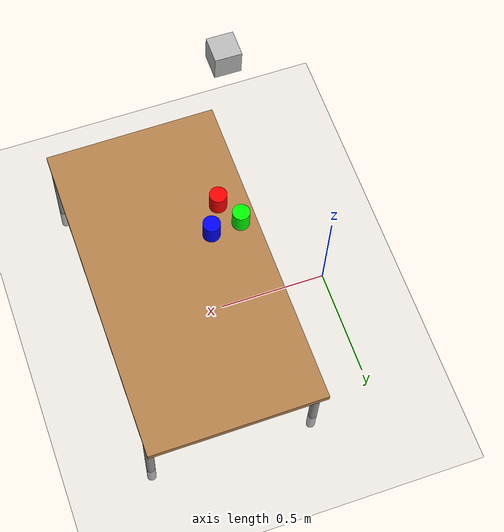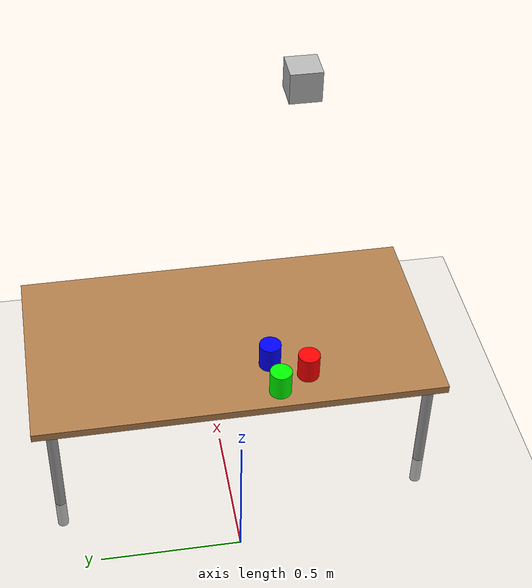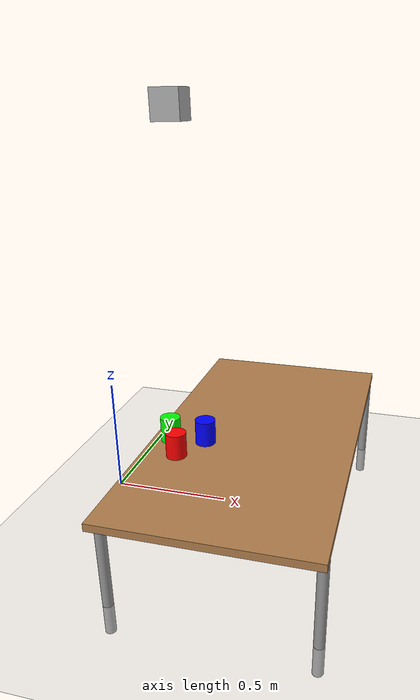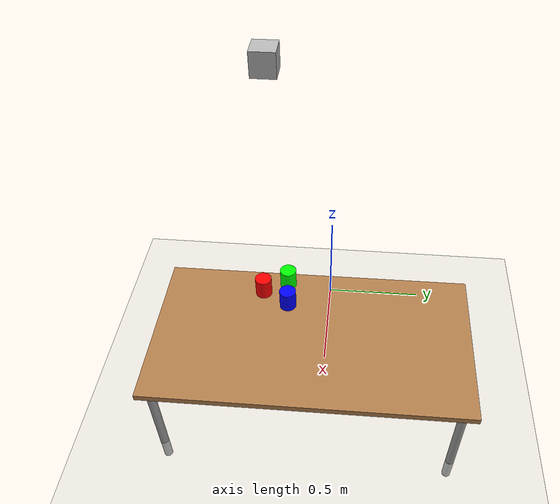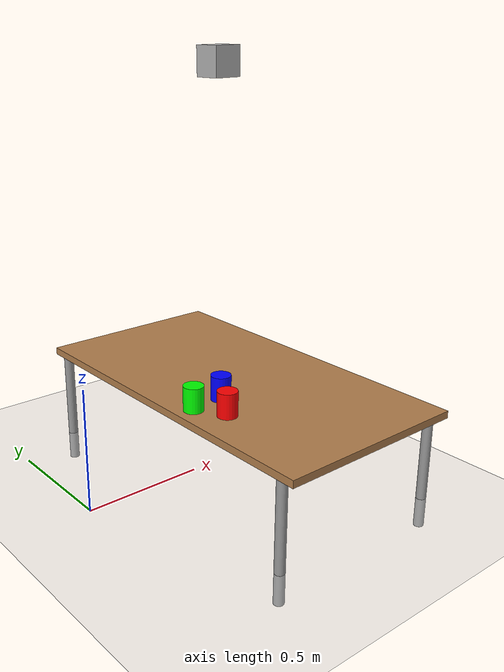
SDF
<sdf version="1.6">
 <world name="default">
  <model name="ground_plane">
   <static>1</static>
   <link name="link">
    <collision name="collision">
     <geometry><plane><normal>0 0 1</normal><size>100 100</size></plane></geometry>
     <surface><friction><ode><mu>100</mu><mu2>50</mu2></ode></friction></surface>
    </collision>
    <visual name="visual">
     <cast_shadows>0</cast_shadows>
     <geometry><plane><normal>0 0 1</normal><size>100 100</size></plane></geometry>
     <material>
      <script><uri>file://media/materials/scripts/gazebo.material</uri><name>Gazebo/Grey</name></script>
     </material>
    </visual>
   </link>
  </model>
  <light name="sun" type="directional">
   <pose>0 0 10 0 -0 0</pose>
   <diffuse>0.8 0.8 0.8 1</diffuse>
   <specular>0.1 0.1 0.1 1</specular>
   <attenuation>
    <range>1000</range>
    <constant>0.9</constant>
    <linear>0.01</linear>
    <quadratic>0.001</quadratic>
   </attenuation>
   <direction>-0.5 0.5 -1</direction>
  </light>
  <model name="camera">
   <link name="link">
    <gravity>0</gravity>
    <pose>0 1.5 2.5 0 -0 0</pose>
    <inertial>
     <mass>0.1</mass>
     <inertia><ixx>1</ixx><ixy>0</ixy><ixz>0</ixz><iyy>1</iyy><iyz>0</iyz><izz>1</izz></inertia>
    </inertial>
    <visual name="visual"><geometry><box><size>0.1 0.1 0.1</size></box></geometry></visual>
    <sensor name="camera" type="camera">
     <camera name="__default__">
      <horizontal_fov>1.047</horizontal_fov>
      <image><width>320</width><height>240</height></image>
      <clip><near>0.1</near><far>100</far></clip>
     </camera>
     <plugin name="camera_controller" filename="libgazebo_ros_camera.so">
      <alwaysOn>true</alwaysOn>
      <updateRate>0.0</updateRate>
      <cameraName>camera</cameraName>
      <imageTopicName>image_raw</imageTopicName>
      <cameraInfoTopicName>camera_info</cameraInfoTopicName>
      <frameName>camera</frameName>
      <hackBaseline>0.07</hackBaseline>
      <distortionK1>0.0</distortionK1>
      <distortionK2>0.0</distortionK2>
      <distortionK3>0.0</distortionK3>
      <distortionT1>0.0</distortionT1>
      <distortionT2>0.0</distortionT2>
     </plugin>
     <always_on>1</always_on>
     <update_rate>30</update_rate>
     <visualize>0</visualize>
    </sensor>
   </link>
   <pose>-2.07108 -1.74357 1.5864 0 1.55446 0</pose>
  </model>
  <gravity>0 0 -9.8</gravity>
  <magnetic_field>6e-06 2.3e-05 -4.2e-05</magnetic_field>
  <atmosphere type="adiabatic"/>
  <physics name="default_physics" default="0" type="ode">
   <max_step_size>0.001</max_step_size>
   <real_time_factor>1</real_time_factor>
   <real_time_update_rate>1000</real_time_update_rate>
  </physics>
  <scene><ambient>0.4 0.4 0.4 1</ambient><background>0.7 0.7 0.7 1</background><shadows>1</shadows></scene>
  <spherical_coordinates>
   <surface_model>EARTH_WGS84</surface_model>
   <latitude_deg>0</latitude_deg>
   <longitude_deg>0</longitude_deg>
   <elevation>0</elevation>
   <heading_deg>0</heading_deg>
  </spherical_coordinates>
  <model name="table_iiwa_height">
   <link name="link">
    <inertial>
     <mass>1</mass>
     <inertia><ixx>1</ixx><ixy>0</ixy><ixz>0</ixz><iyy>1</iyy><iyz>0</iyz><izz>1</izz></inertia>
    </inertial>
    <visual name="visual1">
     <pose>0 0 0.375 0 -0 0</pose>
     <geometry><box><size>1.5 0.8 0.03</size></box></geometry>
     <material>
      <script><uri>file://media/materials/scripts/gazebo.material</uri><name>Gazebo/Wood</name></script>
      <shader type="pixel"><normal_map>__default__</normal_map></shader>
      <ambient>1 1 1 1</ambient>
      <diffuse>1 1 1 1</diffuse>
      <specular>0.2 0.2 0.2 1</specular>
      <emissive>0 0 0 1</emissive>
     </material>
    </visual>
    <visual name="front_left_leg">
     <pose>0.68 0.38 0.125 0 -0 0</pose>
     <geometry><cylinder><radius>0.02</radius><length>0.5</length></cylinder></geometry>
     <material>
      <script><uri>file://media/materials/scripts/gazebo.material</uri><name>Gazebo/Grey</name></script>
      <shader type="pixel"><normal_map>__default__</normal_map></shader>
      <ambient>0.3 0.3 0.3 1</ambient>
      <diffuse>0.7 0.7 0.7 1</diffuse>
      <specular>0.01 0.01 0.01 1</specular>
      <emissive>0 0 0 1</emissive>
     </material>
    </visual>
    <visual name="front_right_leg">
     <pose>0.68 -0.38 0.125 0 -0 0</pose>
     <geometry><cylinder><radius>0.02</radius><length>0.5</length></cylinder></geometry>
     <material>
      <script><uri>file://media/materials/scripts/gazebo.material</uri><name>Gazebo/Grey</name></script>
      <shader type="pixel"><normal_map>__default__</normal_map></shader>
      <ambient>0.3 0.3 0.3 1</ambient>
      <diffuse>0.7 0.7 0.7 1</diffuse>
      <specular>0.01 0.01 0.01 1</specular>
      <emissive>0 0 0 1</emissive>
     </material>
    </visual>
    <visual name="back_right_leg">
     <pose>-0.68 -0.38 0.125 0 -0 0</pose>
     <geometry><cylinder><radius>0.02</radius><length>0.5</length></cylinder></geometry>
     <material>
      <script><uri>file://media/materials/scripts/gazebo.material</uri><name>Gazebo/Grey</name></script>
      <shader type="pixel"><normal_map>__default__</normal_map></shader>
      <ambient>0.3 0.3 0.3 1</ambient>
      <diffuse>0.7 0.7 0.7 1</diffuse>
      <specular>0.01 0.01 0.01 1</specular>
      <emissive>0 0 0 1</emissive>
     </material>
    </visual>
    <visual name="back_left_leg">
     <pose>-0.68 0.38 0.125 0 -0 0</pose>
     <geometry><cylinder><radius>0.02</radius><length>0.5</length></cylinder></geometry>
     <material>
      <script><uri>file://media/materials/scripts/gazebo.material</uri><name>Gazebo/Grey</name></script>
      <shader type="pixel"><normal_map>__default__</normal_map></shader>
      <ambient>0.3 0.3 0.3 1</ambient>
      <diffuse>0.7 0.7 0.7 1</diffuse>
      <specular>0.01 0.01 0.01 1</specular>
      <emissive>0 0 0 1</emissive>
     </material>
    </visual>
    <collision name="surface">
     <pose>0 0 0.375 0 -0 0</pose>
     <geometry><box><size>1.5 0.8 0.03</size></box></geometry>
     <surface>
      <friction>
       <ode><mu>0.6</mu><mu2>0.6</mu2><fdir1>0 0 0</fdir1><slip1>0</slip1><slip2>0</slip2></ode>
       <torsional>
        <coefficient>1</coefficient>
        <patch_radius>0</patch_radius>
        <surface_radius>0</surface_radius>
        <use_patch_radius>1</use_patch_radius>
        <ode><slip>0</slip></ode>
       </torsional>
      </friction>
      <bounce><restitution_coefficient>0</restitution_coefficient><threshold>1e+06</threshold></bounce>
      <contact>
       <collide_without_contact>0</collide_without_contact>
       <collide_without_contact_bitmask>1</collide_without_contact_bitmask>
       <collide_bitmask>1</collide_bitmask>
       <ode>
        <soft_cfm>0</soft_cfm>
        <soft_erp>0.2</soft_erp>
        <kp>1e+13</kp>
        <kd>1</kd>
        <max_vel>0.01</max_vel>
        <min_depth>0</min_depth>
       </ode>
       <bullet>
        <split_impulse>1</split_impulse>
        <split_impulse_penetration_threshold>-0.01</split_impulse_penetration_threshold>
        <soft_cfm>0</soft_cfm>
        <soft_erp>0.2</soft_erp>
        <kp>1e+13</kp>
        <kd>1</kd>
       </bullet>
      </contact>
     </surface>
    </collision>
    <collision name="front_left_leg">
     <pose>0.68 0.38 0.125 0 -0 0</pose>
     <geometry><cylinder><radius>0.02</radius><length>0.25</length></cylinder></geometry>
     <surface>
      <friction>
       <ode><mu>1</mu><mu2>1</mu2><fdir1>0 0 0</fdir1><slip1>0</slip1><slip2>0</slip2></ode>
       <torsional>
        <coefficient>1</coefficient>
        <patch_radius>0</patch_radius>
        <surface_radius>0</surface_radius>
        <use_patch_radius>1</use_patch_radius>
        <ode><slip>0</slip></ode>
       </torsional>
      </friction>
      <bounce><restitution_coefficient>0</restitution_coefficient><threshold>1e+06</threshold></bounce>
      <contact>
       <collide_without_contact>0</collide_without_contact>
       <collide_without_contact_bitmask>1</collide_without_contact_bitmask>
       <collide_bitmask>1</collide_bitmask>
       <ode>
        <soft_cfm>0</soft_cfm>
        <soft_erp>0.2</soft_erp>
        <kp>1e+13</kp>
        <kd>1</kd>
        <max_vel>0.01</max_vel>
        <min_depth>0</min_depth>
       </ode>
       <bullet>
        <split_impulse>1</split_impulse>
        <split_impulse_penetration_threshold>-0.01</split_impulse_penetration_threshold>
        <soft_cfm>0</soft_cfm>
        <soft_erp>0.2</soft_erp>
        <kp>1e+13</kp>
        <kd>1</kd>
       </bullet>
      </contact>
     </surface>
    </collision>
    <collision name="front_right_leg">
     <pose>0.68 -0.38 0.125 0 -0 0</pose>
     <geometry><cylinder><radius>0.02</radius><length>0.25</length></cylinder></geometry>
     <surface>
      <friction>
       <ode><mu>1</mu><mu2>1</mu2><fdir1>0 0 0</fdir1><slip1>0</slip1><slip2>0</slip2></ode>
       <torsional>
        <coefficient>1</coefficient>
        <patch_radius>0</patch_radius>
        <surface_radius>0</surface_radius>
        <use_patch_radius>1</use_patch_radius>
        <ode><slip>0</slip></ode>
       </torsional>
      </friction>
      <bounce><restitution_coefficient>0</restitution_coefficient><threshold>1e+06</threshold></bounce>
      <contact>
       <collide_without_contact>0</collide_without_contact>
       <collide_without_contact_bitmask>1</collide_without_contact_bitmask>
       <collide_bitmask>1</collide_bitmask>
       <ode>
        <soft_cfm>0</soft_cfm>
        <soft_erp>0.2</soft_erp>
        <kp>1e+13</kp>
        <kd>1</kd>
        <max_vel>0.01</max_vel>
        <min_depth>0</min_depth>
       </ode>
       <bullet>
        <split_impulse>1</split_impulse>
        <split_impulse_penetration_threshold>-0.01</split_impulse_penetration_threshold>
        <soft_cfm>0</soft_cfm>
        <soft_erp>0.2</soft_erp>
        <kp>1e+13</kp>
        <kd>1</kd>
       </bullet>
      </contact>
     </surface>
    </collision>
    <collision name="back_right_leg">
     <pose>-0.68 -0.38 0.125 0 -0 0</pose>
     <geometry><cylinder><radius>0.02</radius><length>0.25</length></cylinder></geometry>
     <surface>
      <friction>
       <ode><mu>1</mu><mu2>1</mu2><fdir1>0 0 0</fdir1><slip1>0</slip1><slip2>0</slip2></ode>
       <torsional>
        <coefficient>1</coefficient>
        <patch_radius>0</patch_radius>
        <surface_radius>0</surface_radius>
        <use_patch_radius>1</use_patch_radius>
        <ode><slip>0</slip></ode>
       </torsional>
      </friction>
      <bounce><restitution_coefficient>0</restitution_coefficient><threshold>1e+06</threshold></bounce>
      <contact>
       <collide_without_contact>0</collide_without_contact>
       <collide_without_contact_bitmask>1</collide_without_contact_bitmask>
       <collide_bitmask>1</collide_bitmask>
       <ode>
        <soft_cfm>0</soft_cfm>
        <soft_erp>0.2</soft_erp>
        <kp>1e+13</kp>
        <kd>1</kd>
        <max_vel>0.01</max_vel>
        <min_depth>0</min_depth>
       </ode>
       <bullet>
        <split_impulse>1</split_impulse>
        <split_impulse_penetration_threshold>-0.01</split_impulse_penetration_threshold>
        <soft_cfm>0</soft_cfm>
        <soft_erp>0.2</soft_erp>
        <kp>1e+13</kp>
        <kd>1</kd>
       </bullet>
      </contact>
     </surface>
    </collision>
    <collision name="back_left_leg">
     <pose>-0.68 0.38 0.125 0 -0 0</pose>
     <geometry><cylinder><radius>0.02</radius><length>0.25</length></cylinder></geometry>
     <surface>
      <friction>
       <ode><mu>1</mu><mu2>1</mu2><fdir1>0 0 0</fdir1><slip1>0</slip1><slip2>0</slip2></ode>
       <torsional>
        <coefficient>1</coefficient>
        <patch_radius>0</patch_radius>
        <surface_radius>0</surface_radius>
        <use_patch_radius>1</use_patch_radius>
        <ode><slip>0</slip></ode>
       </torsional>
      </friction>
      <bounce><restitution_coefficient>0</restitution_coefficient><threshold>1e+06</threshold></bounce>
      <contact>
       <collide_without_contact>0</collide_without_contact>
       <collide_without_contact_bitmask>1</collide_without_contact_bitmask>
       <collide_bitmask>1</collide_bitmask>
       <ode>
        <soft_cfm>0</soft_cfm>
        <soft_erp>0.2</soft_erp>
        <kp>1e+13</kp>
        <kd>1</kd>
        <max_vel>0.01</max_vel>
        <min_depth>0</min_depth>
       </ode>
       <bullet>
        <split_impulse>1</split_impulse>
        <split_impulse_penetration_threshold>-0.01</split_impulse_penetration_threshold>
        <soft_cfm>0</soft_cfm>
        <soft_erp>0.2</soft_erp>
        <kp>1e+13</kp>
        <kd>1</kd>
       </bullet>
      </contact>
     </surface>
    </collision>
   </link>
   <static>1</static>
   <pose>0.672658 -0.051838 0 0 -0 1.57545</pose>
  </model>
  <model name="unit_cylinder_blue_iiwa">
   <link name="link">
    <pose>0 0 0.05 0 -0 0</pose>
    <inertial>
     <mass>0.2</mass>
     <inertia><ixx>0.145833</ixx><ixy>0</ixy><ixz>0</ixz><iyy>0.145833</iyy><iyz>0</iyz><izz>0.125</izz></inertia>
    </inertial>
    <visual name="visual">
     <geometry><cylinder><radius>0.04</radius><length>0.1</length></cylinder></geometry>
     <material>
      <script><name>Gazebo/Grey</name><uri>file://media/materials/scripts/gazebo.material</uri></script>
      <shader type="pixel"><normal_map>__default__</normal_map></shader>
      <ambient>0 0 1 1</ambient>
      <diffuse>0 0 1 1</diffuse>
      <specular>0 0 1 1</specular>
      <emissive>0 0 1 1</emissive>
     </material>
    </visual>
    <collision name="collision">
     <geometry><cylinder><radius>0.04</radius><length>0.1</length></cylinder></geometry>
     <surface>
      <friction>
       <ode><mu>1</mu><mu2>1</mu2><fdir1>0 0 0</fdir1><slip1>0</slip1><slip2>0</slip2></ode>
       <torsional>
        <coefficient>1</coefficient>
        <patch_radius>0</patch_radius>
        <surface_radius>0</surface_radius>
        <use_patch_radius>1</use_patch_radius>
        <ode><slip>0</slip></ode>
       </torsional>
      </friction>
      <bounce><restitution_coefficient>0</restitution_coefficient><threshold>1e+06</threshold></bounce>
      <contact>
       <collide_without_contact>0</collide_without_contact>
       <collide_without_contact_bitmask>1</collide_without_contact_bitmask>
       <collide_bitmask>1</collide_bitmask>
       <ode>
        <soft_cfm>0</soft_cfm>
        <soft_erp>0.2</soft_erp>
        <kp>1e+13</kp>
        <kd>1</kd>
        <max_vel>0.01</max_vel>
        <min_depth>0</min_depth>
       </ode>
       <bullet>
        <split_impulse>1</split_impulse>
        <split_impulse_penetration_threshold>-0.01</split_impulse_penetration_threshold>
        <soft_cfm>0</soft_cfm>
        <soft_erp>0.2</soft_erp>
        <kp>1e+13</kp>
        <kd>1</kd>
       </bullet>
      </contact>
     </surface>
    </collision>
   </link>
   <static>0</static>
   <pose>0.489832 -0.185039 0.39 -0.00017 -0.000155 -0.000297</pose>
  </model>
  <model name="unit_cylinder_green_iiwa">
   <link name="link">
    <pose>0 0 0.05 0 -0 0</pose>
    <inertial>
     <mass>0.2</mass>
     <inertia><ixx>0.145833</ixx><ixy>0</ixy><ixz>0</ixz><iyy>0.145833</iyy><iyz>0</iyz><izz>0.125</izz></inertia>
    </inertial>
    <visual name="visual">
     <geometry><cylinder><radius>0.04</radius><length>0.1</length></cylinder></geometry>
     <material>
      <script><name>Gazebo/Grey</name><uri>file://media/materials/scripts/gazebo.material</uri></script>
      <shader type="pixel"><normal_map>__default__</normal_map></shader>
      <ambient>0 1 0 1</ambient>
      <diffuse>0 1 0 1</diffuse>
      <specular>0 1 0 1</specular>
      <emissive>0 1 0 1</emissive>
     </material>
    </visual>
    <collision name="collision">
     <geometry><cylinder><radius>0.04</radius><length>0.1</length></cylinder></geometry>
     <surface>
      <friction>
       <ode><mu>1</mu><mu2>1</mu2><fdir1>0 0 0</fdir1><slip1>0</slip1><slip2>0</slip2></ode>
       <torsional>
        <coefficient>1</coefficient>
        <patch_radius>0</patch_radius>
        <surface_radius>0</surface_radius>
        <use_patch_radius>1</use_patch_radius>
        <ode><slip>0</slip></ode>
       </torsional>
      </friction>
      <bounce><restitution_coefficient>0</restitution_coefficient><threshold>1e+06</threshold></bounce>
      <contact>
       <collide_without_contact>0</collide_without_contact>
       <collide_without_contact_bitmask>1</collide_without_contact_bitmask>
       <collide_bitmask>1</collide_bitmask>
       <ode>
        <soft_cfm>0</soft_cfm>
        <soft_erp>0.2</soft_erp>
        <kp>1e+13</kp>
        <kd>1</kd>
        <max_vel>0.01</max_vel>
        <min_depth>0</min_depth>
       </ode>
       <bullet>
        <split_impulse>1</split_impulse>
        <split_impulse_penetration_threshold>-0.01</split_impulse_penetration_threshold>
        <soft_cfm>0</soft_cfm>
        <soft_erp>0.2</soft_erp>
        <kp>1e+13</kp>
        <kd>1</kd>
       </bullet>
      </contact>
     </surface>
    </collision>
   </link>
   <static>0</static>
   <pose>0.348272 -0.198028 0.390007 -0.000186 2.7e-05 -0.00012</pose>
  </model>
  <model name="unit_cylinder_red_iiwa">
   <link name="link">
    <pose>0 0 0.05 0 -0 0</pose>
    <inertial>
     <mass>0.2</mass>
     <inertia><ixx>0.145833</ixx><ixy>0</ixy><ixz>0</ixz><iyy>0.145833</iyy><iyz>0</iyz><izz>0.125</izz></inertia>
    </inertial>
    <visual name="visual">
     <geometry><cylinder><radius>0.04</radius><length>0.1</length></cylinder></geometry>
     <material>
      <script><name>Gazebo/Grey</name><uri>file://media/materials/scripts/gazebo.material</uri></script>
      <shader type="pixel"><normal_map>__default__</normal_map></shader>
      <ambient>1 0 0 1</ambient>
      <diffuse>1 0 0 1</diffuse>
      <specular>1 0 0 1</specular>
      <emissive>1 0 0 1</emissive>
     </material>
    </visual>
    <collision name="collision">
     <geometry><cylinder><radius>0.04</radius><length>0.1</length></cylinder></geometry>
     <surface>
      <friction>
       <ode><mu>1</mu><mu2>1</mu2><fdir1>0 0 0</fdir1><slip1>0</slip1><slip2>0</slip2></ode>
       <torsional>
        <coefficient>1</coefficient>
        <patch_radius>0</patch_radius>
        <surface_radius>0</surface_radius>
        <use_patch_radius>1</use_patch_radius>
        <ode><slip>0</slip></ode>
       </torsional>
      </friction>
      <bounce><restitution_coefficient>0</restitution_coefficient><threshold>1e+06</threshold></bounce>
      <contact>
       <collide_without_contact>0</collide_without_contact>
       <collide_without_contact_bitmask>1</collide_without_contact_bitmask>
       <collide_bitmask>1</collide_bitmask>
       <ode>
        <soft_cfm>0</soft_cfm>
        <soft_erp>0.2</soft_erp>
        <kp>1e+13</kp>
        <kd>1</kd>
        <max_vel>0.01</max_vel>
        <min_depth>0</min_depth>
       </ode>
       <bullet>
        <split_impulse>1</split_impulse>
        <split_impulse_penetration_threshold>-0.01</split_impulse_penetration_threshold>
        <soft_cfm>0</soft_cfm>
        <soft_erp>0.2</soft_erp>
        <kp>1e+13</kp>
        <kd>1</kd>
       </bullet>
      </contact>
     </surface>
    </collision>
   </link>
   <static>0</static>
   <pose>0.415105 -0.313433 0.389997 -0.000184 3.3e-05 -0.000163</pose>
  </model>
 </world>
</sdf>
